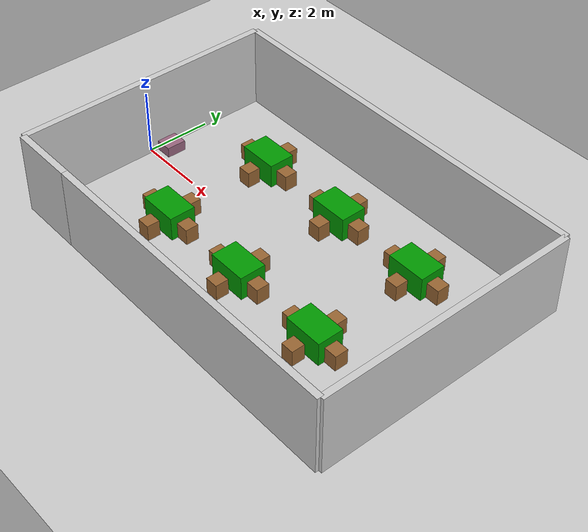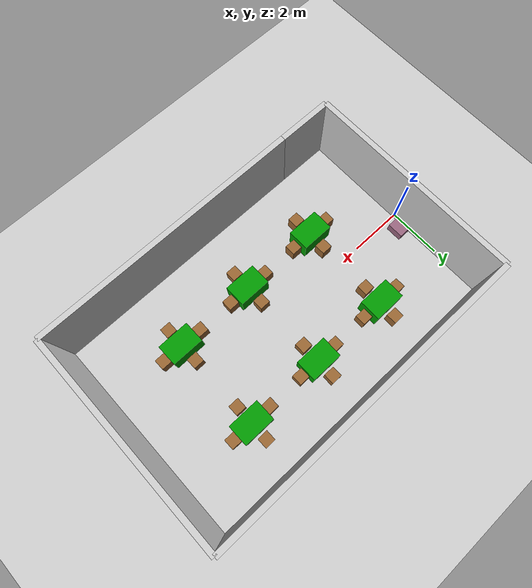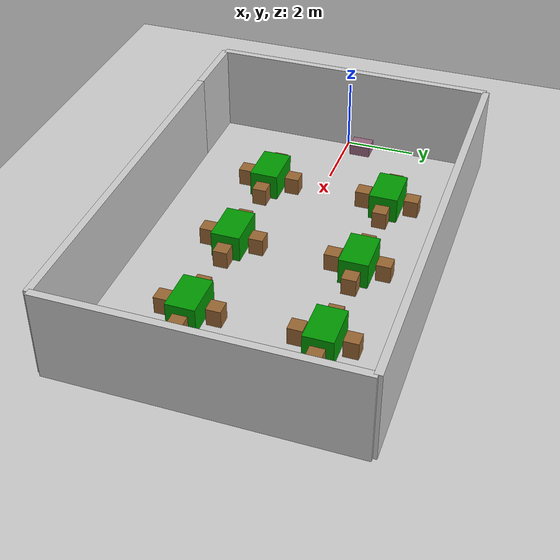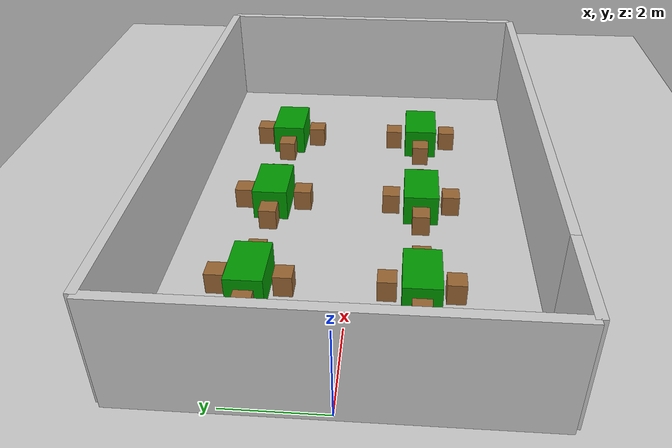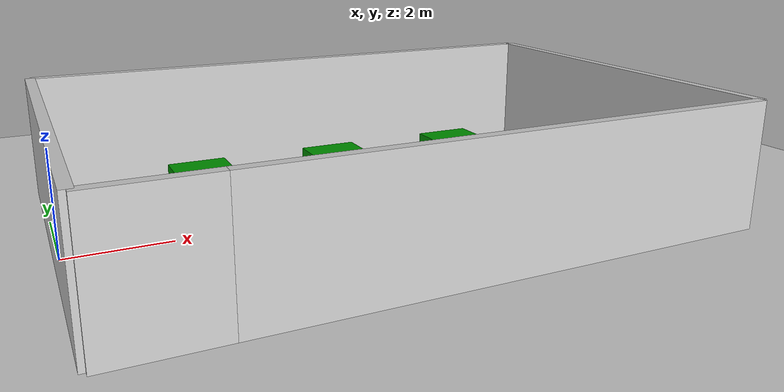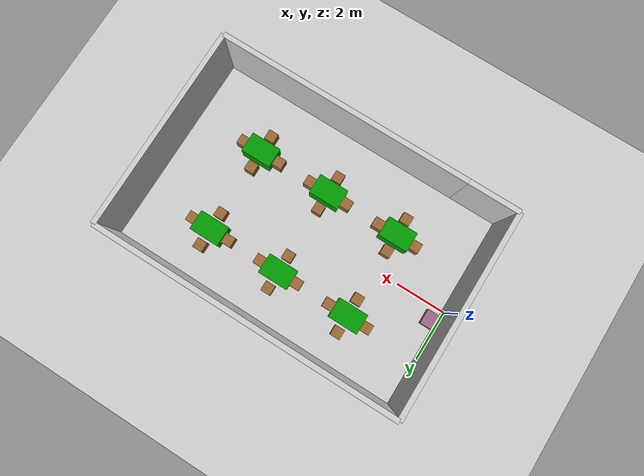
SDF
<?xml version="1.0" ?>
<sdf version="1.6">
  <world name="cafe_world">

    <!-- Işıklandırma -->
    <include>
      <uri>model://sun</uri>
    </include>

    <!-- Zemin -->
    <include>
      <uri>model://ground_plane</uri>
    </include>

    <!-- Fizik ayarları -->
    <physics type="ode">
      <real_time_update_rate>1000.0</real_time_update_rate>
      <max_step_size>0.001</max_step_size>
    </physics>

    <!-- Kafe Duvarları -->
    <!-- Sol Duvar -->
    <model name="left_wall">
      <static>true</static>
      <pose>0 0 1.25 0 0 0</pose>
      <link name="link">
        <collision name="collision">
          <geometry>
            <box>
              <size>0.2 8 2.5</size>
            </box>
          </geometry>
        </collision>
        <visual name="visual">
          <geometry>
            <box>
              <size>0.2 8 2.5</size>
            </box>
          </geometry>
          <material>
            <ambient>0.8 0.8 0.8 1</ambient>
            <diffuse>0.8 0.8 0.8 1</diffuse>
          </material>
        </visual>
      </link>
    </model>

    <!-- Üst Duvar -->
    <model name="top_wall">
      <static>true</static>
      <pose>6 4 1.25 0 0 0</pose>
      <link name="link">
        <collision name="collision">
          <geometry>
            <box>
              <size>12 0.2 2.5</size>
            </box>
          </geometry>
        </collision>
        <visual name="visual">
          <geometry>
            <box>
              <size>12 0.2 2.5</size>
            </box>
          </geometry>
          <material>
            <ambient>0.8 0.8 0.8 1</ambient>
            <diffuse>0.8 0.8 0.8 1</diffuse>
          </material>
        </visual>
      </link>
    </model>

    <!-- Sağ Duvar -->
    <model name="right_wall">
      <static>true</static>
      <pose>12 0 1.25 0 0 0</pose>
      <link name="link">
        <collision name="collision">
          <geometry>
            <box>
              <size>0.2 8 2.5</size>
            </box>
          </geometry>
        </collision>
        <visual name="visual">
          <geometry>
            <box>
              <size>0.2 8 2.5</size>
            </box>
          </geometry>
          <material>
            <ambient>0.8 0.8 0.8 1</ambient>
            <diffuse>0.8 0.8 0.8 1</diffuse>
          </material>
        </visual>
      </link>
    </model>

    <!-- Alt Duvar Sol Kısım (Kapı öncesi) -->
    <model name="bottom_wall_left">
      <static>true</static>
      <pose>1 -4 1.25 0 0 0</pose>
      <link name="link">
        <collision name="collision">
          <geometry>
            <box>
              <size>2 0.2 2.5</size>
            </box>
          </geometry>
        </collision>
        <visual name="visual">
          <geometry>
            <box>
              <size>2 0.2 2.5</size>
            </box>
          </geometry>
          <material>
            <ambient>0.8 0.8 0.8 1</ambient>
            <diffuse>0.8 0.8 0.8 1</diffuse>
          </material>
        </visual>
      </link>
    </model>

    <!-- Alt Duvar Sağ Kısım (Kapı sonrası) -->
    <model name="bottom_wall_right">
      <static>true</static>
      <pose>7 -4 1.25 0 0 0</pose>
      <link name="link">
        <collision name="collision">
          <geometry>
            <box>
              <size>10 0.2 2.5</size>
            </box>
          </geometry>
        </collision>
        <visual name="visual">
          <geometry>
            <box>
              <size>10 0.2 2.5</size>
            </box>
          </geometry>
          <material>
            <ambient>0.8 0.8 0.8 1</ambient>
            <diffuse>0.8 0.8 0.8 1</diffuse>
          </material>
        </visual>
      </link>
    </model>

    <!-- Mutfak Barı (Sol tarafta, mor/pembe uzun yer) -->
    <model name="kitchen_bar">
      <static>true</static>
      <pose>0.3 0.5 0 0 0 0</pose>
      <link name="link">
        <collision name="collision">
          <geometry>
            <box>
              <size>0.6 0.6 0.6</size>
            </box>
          </geometry>
        </collision>
        <visual name="visual">
          <geometry>
            <box>
              <size>0.6 0.6 0.6</size>
            </box>
          </geometry>
          <material>
            <ambient>0.6 0.4 0.5 1</ambient>
            <diffuse>0.6 0.4 0.5 1</diffuse>
          </material>
        </visual>
      </link>
    </model>

    <!-- Masalar ve Sandalyeler -->
    <!-- Üst Sıra - 1. Masa -->
    <model name="table_1">
      <static>true</static>
      <pose>3.0 2 0.375 0 0 0</pose>
      <link name="link">
        <collision name="collision">
          <geometry>
            <box>
              <size>1.2 0.8 0.75</size>
            </box>
          </geometry>
        </collision>
        <visual name="visual">
          <geometry>
            <box>
              <size>1.2 0.8 0.75</size>
            </box>
          </geometry>
          <material>
            <ambient>0 0.5 0 1</ambient>
            <diffuse>0 0.6 0 1</diffuse>
          </material>
        </visual>
      </link>
    </model>

    <!-- Masa 1 - Sandalyeler -->
    <model name="chair_1_1">
      <static>true</static>
      <pose>2.2 2 0.25 0 0 0</pose>
      <link name="link">
        <collision name="collision">
          <geometry>
            <box>
              <size>0.4 0.4 0.5</size>
            </box>
          </geometry>
        </collision>
        <visual name="visual">
          <geometry>
            <box>
              <size>0.4 0.4 0.5</size>
            </box>
          </geometry>
          <material>
            <ambient>0.6 0.4 0.2 1</ambient>
            <diffuse>0.6 0.4 0.2 1</diffuse>
          </material>
        </visual>
      </link>
    </model>

    <model name="chair_1_2">
      <static>true</static>
      <pose>3.8 2 0.25 0 0 0</pose>
      <link name="link">
        <collision name="collision">
          <geometry>
            <box>
              <size>0.4 0.4 0.5</size>
            </box>
          </geometry>
        </collision>
        <visual name="visual">
          <geometry>
            <box>
              <size>0.4 0.4 0.5</size>
            </box>
          </geometry>
          <material>
            <ambient>0.6 0.4 0.2 1</ambient>
            <diffuse>0.6 0.4 0.2 1</diffuse>
          </material>
        </visual>
      </link>
    </model>

    <model name="chair_1_3">
      <static>true</static>
      <pose>3.0 2.7 0.25 0 0 0</pose>
      <link name="link">
        <collision name="collision">
          <geometry>
            <box>
              <size>0.4 0.4 0.5</size>
            </box>
          </geometry>
        </collision>
        <visual name="visual">
          <geometry>
            <box>
              <size>0.4 0.4 0.5</size>
            </box>
          </geometry>
          <material>
            <ambient>0.6 0.4 0.2 1</ambient>
            <diffuse>0.6 0.4 0.2 1</diffuse>
          </material>
        </visual>
      </link>
    </model>

    <model name="chair_1_4">
      <static>true</static>
      <pose>3.0 1.3 0.25 0 0 0</pose>
      <link name="link">
        <collision name="collision">
          <geometry>
            <box>
              <size>0.4 0.4 0.5</size>
            </box>
          </geometry>
        </collision>
        <visual name="visual">
          <geometry>
            <box>
              <size>0.4 0.4 0.5</size>
            </box>
          </geometry>
          <material>
            <ambient>0.6 0.4 0.2 1</ambient>
            <diffuse>0.6 0.4 0.2 1</diffuse>
          </material>
        </visual>
      </link>
    </model>

    <!-- Üst Sıra - 2. Masa -->
    <model name="table_2">
      <static>true</static>
      <pose>6.0 2 0.375 0 0 0</pose>
      <link name="link">
        <collision name="collision">
          <geometry>
            <box>
              <size>1.2 0.8 0.75</size>
            </box>
          </geometry>
        </collision>
        <visual name="visual">
          <geometry>
            <box>
              <size>1.2 0.8 0.75</size>
            </box>
          </geometry>
          <material>
            <ambient>0 0.5 0 1</ambient>
            <diffuse>0 0.6 0 1</diffuse>
          </material>
        </visual>
      </link>
    </model>

    <!-- Masa 2 - Sandalyeler -->
    <model name="chair_2_1">
      <static>true</static>
      <pose>5.2 2 0.25 0 0 0</pose>
      <link name="link">
        <collision name="collision">
          <geometry>
            <box>
              <size>0.4 0.4 0.5</size>
            </box>
          </geometry>
        </collision>
        <visual name="visual">
          <geometry>
            <box>
              <size>0.4 0.4 0.5</size>
            </box>
          </geometry>
          <material>
            <ambient>0.6 0.4 0.2 1</ambient>
            <diffuse>0.6 0.4 0.2 1</diffuse>
          </material>
        </visual>
      </link>
    </model>

    <model name="chair_2_2">
      <static>true</static>
      <pose>6.8 2 0.25 0 0 0</pose>
      <link name="link">
        <collision name="collision">
          <geometry>
            <box>
              <size>0.4 0.4 0.5</size>
            </box>
          </geometry>
        </collision>
        <visual name="visual">
          <geometry>
            <box>
              <size>0.4 0.4 0.5</size>
            </box>
          </geometry>
          <material>
            <ambient>0.6 0.4 0.2 1</ambient>
            <diffuse>0.6 0.4 0.2 1</diffuse>
          </material>
        </visual>
      </link>
    </model>

    <model name="chair_2_3">
      <static>true</static>
      <pose>6.0 2.7 0.25 0 0 0</pose>
      <link name="link">
        <collision name="collision">
          <geometry>
            <box>
              <size>0.4 0.4 0.5</size>
            </box>
          </geometry>
        </collision>
        <visual name="visual">
          <geometry>
            <box>
              <size>0.4 0.4 0.5</size>
            </box>
          </geometry>
          <material>
            <ambient>0.6 0.4 0.2 1</ambient>
            <diffuse>0.6 0.4 0.2 1</diffuse>
          </material>
        </visual>
      </link>
    </model>

    <model name="chair_2_4">
      <static>true</static>
      <pose>6.0 1.3 0.25 0 0 0</pose>
      <link name="link">
        <collision name="collision">
          <geometry>
            <box>
              <size>0.4 0.4 0.5</size>
            </box>
          </geometry>
        </collision>
        <visual name="visual">
          <geometry>
            <box>
              <size>0.4 0.4 0.5</size>
            </box>
          </geometry>
          <material>
            <ambient>0.6 0.4 0.2 1</ambient>
            <diffuse>0.6 0.4 0.2 1</diffuse>
          </material>
        </visual>
      </link>
    </model>

    <!-- Üst Sıra - 3. Masa -->
    <model name="table_3">
      <static>true</static>
      <pose>9.0 2 0.375 0 0 0</pose>
      <link name="link">
        <collision name="collision">
          <geometry>
            <box>
              <size>1.2 0.8 0.75</size>
            </box>
          </geometry>
        </collision>
        <visual name="visual">
          <geometry>
            <box>
              <size>1.2 0.8 0.75</size>
            </box>
          </geometry>
          <material>
            <ambient>0 0.5 0 1</ambient>
            <diffuse>0 0.6 0 1</diffuse>
          </material>
        </visual>
      </link>
    </model>

    <!-- Masa 3 - Sandalyeler -->
    <model name="chair_3_1">
      <static>true</static>
      <pose>8.2 2 0.25 0 0 0</pose>
      <link name="link">
        <collision name="collision">
          <geometry>
            <box>
              <size>0.4 0.4 0.5</size>
            </box>
          </geometry>
        </collision>
        <visual name="visual">
          <geometry>
            <box>
              <size>0.4 0.4 0.5</size>
            </box>
          </geometry>
          <material>
            <ambient>0.6 0.4 0.2 1</ambient>
            <diffuse>0.6 0.4 0.2 1</diffuse>
          </material>
        </visual>
      </link>
    </model>

    <model name="chair_3_2">
      <static>true</static>
      <pose>9.8 2 0.25 0 0 0</pose>
      <link name="link">
        <collision name="collision">
          <geometry>
            <box>
              <size>0.4 0.4 0.5</size>
            </box>
          </geometry>
        </collision>
        <visual name="visual">
          <geometry>
            <box>
              <size>0.4 0.4 0.5</size>
            </box>
          </geometry>
          <material>
            <ambient>0.6 0.4 0.2 1</ambient>
            <diffuse>0.6 0.4 0.2 1</diffuse>
          </material>
        </visual>
      </link>
    </model>

    <model name="chair_3_3">
      <static>true</static>
      <pose>9.0 2.7 0.25 0 0 0</pose>
      <link name="link">
        <collision name="collision">
          <geometry>
            <box>
              <size>0.4 0.4 0.5</size>
            </box>
          </geometry>
        </collision>
        <visual name="visual">
          <geometry>
            <box>
              <size>0.4 0.4 0.5</size>
            </box>
          </geometry>
          <material>
            <ambient>0.6 0.4 0.2 1</ambient>
            <diffuse>0.6 0.4 0.2 1</diffuse>
          </material>
        </visual>
      </link>
    </model>

    <model name="chair_3_4">
      <static>true</static>
      <pose>9.0 1.3 0.25 0 0 0</pose>
      <link name="link">
        <collision name="collision">
          <geometry>
            <box>
              <size>0.4 0.4 0.5</size>
            </box>
          </geometry>
        </collision>
        <visual name="visual">
          <geometry>
            <box>
              <size>0.4 0.4 0.5</size>
            </box>
          </geometry>
          <material>
            <ambient>0.6 0.4 0.2 1</ambient>
            <diffuse>0.6 0.4 0.2 1</diffuse>
          </material>
        </visual>
      </link>
    </model>

    <!-- Alt Sıra - 4. Masa -->
    <model name="table_4">
      <static>true</static>
      <pose>3.0 -1.5 0.375 0 0 0</pose>
      <link name="link">
        <collision name="collision">
          <geometry>
            <box>
              <size>1.2 0.8 0.75</size>
            </box>
          </geometry>
        </collision>
        <visual name="visual">
          <geometry>
            <box>
              <size>1.2 0.8 0.75</size>
            </box>
          </geometry>
          <material>
            <ambient>0 0.5 0 1</ambient>
            <diffuse>0 0.6 0 1</diffuse>
          </material>
        </visual>
      </link>
    </model>

    <!-- Masa 4 - Sandalyeler -->
    <model name="chair_4_1">
      <static>true</static>
      <pose>2.2 -1.5 0.25 0 0 0</pose>
      <link name="link">
        <collision name="collision">
          <geometry>
            <box>
              <size>0.4 0.4 0.5</size>
            </box>
          </geometry>
        </collision>
        <visual name="visual">
          <geometry>
            <box>
              <size>0.4 0.4 0.5</size>
            </box>
          </geometry>
          <material>
            <ambient>0.6 0.4 0.2 1</ambient>
            <diffuse>0.6 0.4 0.2 1</diffuse>
          </material>
        </visual>
      </link>
    </model>

    <model name="chair_4_2">
      <static>true</static>
      <pose>3.8 -1.5 0.25 0 0 0</pose>
      <link name="link">
        <collision name="collision">
          <geometry>
            <box>
              <size>0.4 0.4 0.5</size>
            </box>
          </geometry>
        </collision>
        <visual name="visual">
          <geometry>
            <box>
              <size>0.4 0.4 0.5</size>
            </box>
          </geometry>
          <material>
            <ambient>0.6 0.4 0.2 1</ambient>
            <diffuse>0.6 0.4 0.2 1</diffuse>
          </material>
        </visual>
      </link>
    </model>

    <model name="chair_4_3">
      <static>true</static>
      <pose>3.0 -0.8 0.25 0 0 0</pose>
      <link name="link">
        <collision name="collision">
          <geometry>
            <box>
              <size>0.4 0.4 0.5</size>
            </box>
          </geometry>
        </collision>
        <visual name="visual">
          <geometry>
            <box>
              <size>0.4 0.4 0.5</size>
            </box>
          </geometry>
          <material>
            <ambient>0.6 0.4 0.2 1</ambient>
            <diffuse>0.6 0.4 0.2 1</diffuse>
          </material>
        </visual>
      </link>
    </model>

    <model name="chair_4_4">
      <static>true</static>
      <pose>3.0 -2.2 0.25 0 0 0</pose>
      <link name="link">
        <collision name="collision">
          <geometry>
            <box>
              <size>0.4 0.4 0.5</size>
            </box>
          </geometry>
        </collision>
        <visual name="visual">
          <geometry>
            <box>
              <size>0.4 0.4 0.5</size>
            </box>
          </geometry>
          <material>
            <ambient>0.6 0.4 0.2 1</ambient>
            <diffuse>0.6 0.4 0.2 1</diffuse>
          </material>
        </visual>
      </link>
    </model>

    <!-- Alt Sıra - 5. Masa -->
    <model name="table_5">
      <static>true</static>
      <pose>6.0 -1.5 0.375 0 0 0</pose>
      <link name="link">
        <collision name="collision">
          <geometry>
            <box>
              <size>1.2 0.8 0.75</size>
            </box>
          </geometry>
        </collision>
        <visual name="visual">
          <geometry>
            <box>
              <size>1.2 0.8 0.75</size>
            </box>
          </geometry>
          <material>
            <ambient>0 0.5 0 1</ambient>
            <diffuse>0 0.6 0 1</diffuse>
          </material>
        </visual>
      </link>
    </model>

    <!-- Masa 5 - Sandalyeler -->
    <model name="chair_5_1">
      <static>true</static>
      <pose>5.2 -1.5 0.25 0 0 0</pose>
      <link name="link">
        <collision name="collision">
          <geometry>
            <box>
              <size>0.4 0.4 0.5</size>
            </box>
          </geometry>
        </collision>
        <visual name="visual">
          <geometry>
            <box>
              <size>0.4 0.4 0.5</size>
            </box>
          </geometry>
          <material>
            <ambient>0.6 0.4 0.2 1</ambient>
            <diffuse>0.6 0.4 0.2 1</diffuse>
          </material>
        </visual>
      </link>
    </model>

    <model name="chair_5_2">
      <static>true</static>
      <pose>6.8 -1.5 0.25 0 0 0</pose>
      <link name="link">
        <collision name="collision">
          <geometry>
            <box>
              <size>0.4 0.4 0.5</size>
            </box>
          </geometry>
        </collision>
        <visual name="visual">
          <geometry>
            <box>
              <size>0.4 0.4 0.5</size>
            </box>
          </geometry>
          <material>
            <ambient>0.6 0.4 0.2 1</ambient>
            <diffuse>0.6 0.4 0.2 1</diffuse>
          </material>
        </visual>
      </link>
    </model>

    <model name="chair_5_3">
      <static>true</static>
      <pose>6.0 -0.8 0.25 0 0 0</pose>
      <link name="link">
        <collision name="collision">
          <geometry>
            <box>
              <size>0.4 0.4 0.5</size>
            </box>
          </geometry>
        </collision>
        <visual name="visual">
          <geometry>
            <box>
              <size>0.4 0.4 0.5</size>
            </box>
          </geometry>
          <material>
            <ambient>0.6 0.4 0.2 1</ambient>
            <diffuse>0.6 0.4 0.2 1</diffuse>
          </material>
        </visual>
      </link>
    </model>

    <model name="chair_5_4">
      <static>true</static>
      <pose>6.0 -2.2 0.25 0 0 0</pose>
      <link name="link">
        <collision name="collision">
          <geometry>
            <box>
              <size>0.4 0.4 0.5</size>
            </box>
          </geometry>
        </collision>
        <visual name="visual">
          <geometry>
            <box>
              <size>0.4 0.4 0.5</size>
            </box>
          </geometry>
          <material>
            <ambient>0.6 0.4 0.2 1</ambient>
            <diffuse>0.6 0.4 0.2 1</diffuse>
          </material>
        </visual>
      </link>
    </model>

    <!-- Alt Sıra - 6. Masa -->
    <model name="table_6">
      <static>true</static>
      <pose>9.0 -1.5 0.375 0 0 0</pose>
      <link name="link">
        <collision name="collision">
          <geometry>
            <box>
              <size>1.2 0.8 0.75</size>
            </box>
          </geometry>
        </collision>
        <visual name="visual">
          <geometry>
            <box>
              <size>1.2 0.8 0.75</size>
            </box>
          </geometry>
          <material>
            <ambient>0 0.5 0 1</ambient>
            <diffuse>0 0.6 0 1</diffuse>
          </material>
        </visual>
      </link>
    </model>

    <!-- Masa 6 - Sandalyeler -->
    <model name="chair_6_1">
      <static>true</static>
      <pose>8.2 -1.5 0.25 0 0 0</pose>
      <link name="link">
        <collision name="collision">
          <geometry>
            <box>
              <size>0.4 0.4 0.5</size>
            </box>
          </geometry>
        </collision>
        <visual name="visual">
          <geometry>
            <box>
              <size>0.4 0.4 0.5</size>
            </box>
          </geometry>
          <material>
            <ambient>0.6 0.4 0.2 1</ambient>
            <diffuse>0.6 0.4 0.2 1</diffuse>
          </material>
        </visual>
      </link>
    </model>

    <model name="chair_6_2">
      <static>true</static>
      <pose>9.8 -1.5 0.25 0 0 0</pose>
      <link name="link">
        <collision name="collision">
          <geometry>
            <box>
              <size>0.4 0.4 0.5</size>
            </box>
          </geometry>
        </collision>
        <visual name="visual">
          <geometry>
            <box>
              <size>0.4 0.4 0.5</size>
            </box>
          </geometry>
          <material>
            <ambient>0.6 0.4 0.2 1</ambient>
            <diffuse>0.6 0.4 0.2 1</diffuse>
          </material>
        </visual>
      </link>
    </model>

    <model name="chair_6_3">
      <static>true</static>
      <pose>9.0 -0.8 0.25 0 0 0</pose>
      <link name="link">
        <collision name="collision">
          <geometry>
            <box>
              <size>0.4 0.4 0.5</size>
            </box>
          </geometry>
        </collision>
        <visual name="visual">
          <geometry>
            <box>
              <size>0.4 0.4 0.5</size>
            </box>
          </geometry>
          <material>
            <ambient>0.6 0.4 0.2 1</ambient>
            <diffuse>0.6 0.4 0.2 1</diffuse>
          </material>
        </visual>
      </link>
    </model>

    <model name="chair_6_4">
      <static>true</static>
      <pose>9.0 -2.2 0.25 0 0 0</pose>
      <link name="link">
        <collision name="collision">
          <geometry>
            <box>
              <size>0.4 0.4 0.5</size>
            </box>
          </geometry>
        </collision>
        <visual name="visual">
          <geometry>
            <box>
              <size>0.4 0.4 0.5</size>
            </box>
          </geometry>
          <material>
            <ambient>0.6 0.4 0.2 1</ambient>
            <diffuse>0.6 0.4 0.2 1</diffuse>
          </material>
        </visual>
      </link>
    </model>

  </world>
</sdf>
